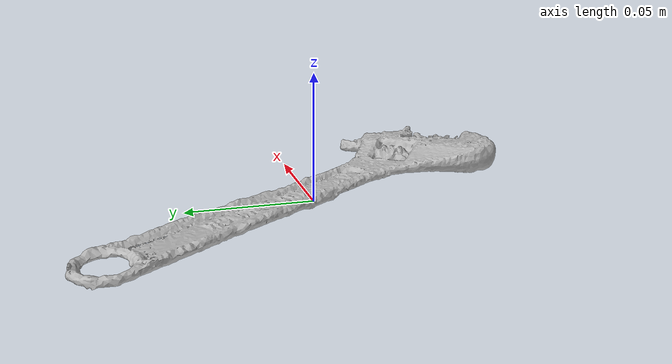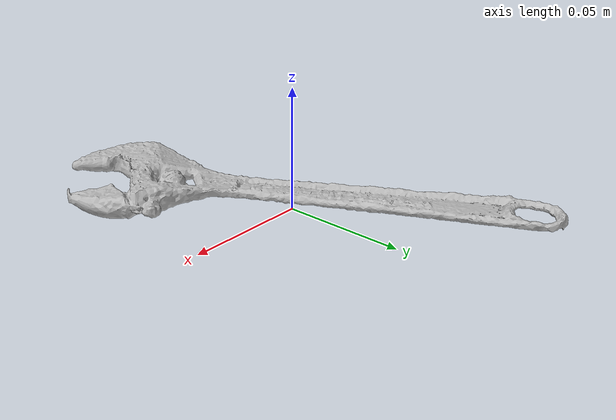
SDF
<?xml version="1.0" ?>
<sdf version='1.8'>
  <model name='ycb_042_adjustable_wrench'>
    <link name='body'>
      <inertial>
        <mass>0.252</mass>
        <pose>0.0180084627 -0.0371488418 0.006988781 0 0 0</pose>
        <inertia>
          <ixx>0.000428579037192</ixx>
          <ixy>0.000208257627943</ixy>
          <ixz>-3.64564762384e-06</ixz>
          <iyy>0.000170213921775</iyy>
          <iyz>9.87179872447e-06</iyz>
          <izz>0.000595765701955</izz>
        </inertia>
      </inertial>
      <visual name='ycb_042_adjustable_wrench_visual'>
        <pose>0.003507 0.012516 0.002738 0 0 0</pose>
        <geometry>
          <mesh>
            <uri>model://ycb_042_adjustable_wrench/meshes/textured.dae</uri>
          </mesh>
        </geometry>
      </visual>
      <collision name='ycb_042_adjustable_wrench_collision'>
        <pose>0.003507 0.012516 0.002738 0 0 0</pose>
        <geometry>
          <mesh>
            <uri>model://ycb_042_adjustable_wrench/meshes/nontextured.stl</uri>
          </mesh>
        </geometry>
        <max_contacts>10</max_contacts>
        <surface>
          <contact>
            <ode>
              <kp>1e15</kp>
              <kd>1e13</kd>
            </ode>
          </contact>
        </surface>
      </collision>
    </link>
  </model>
</sdf>
